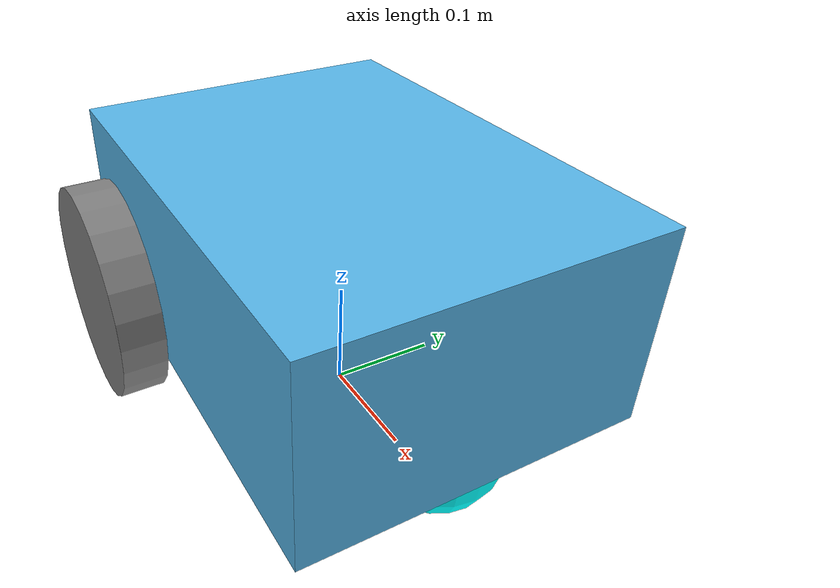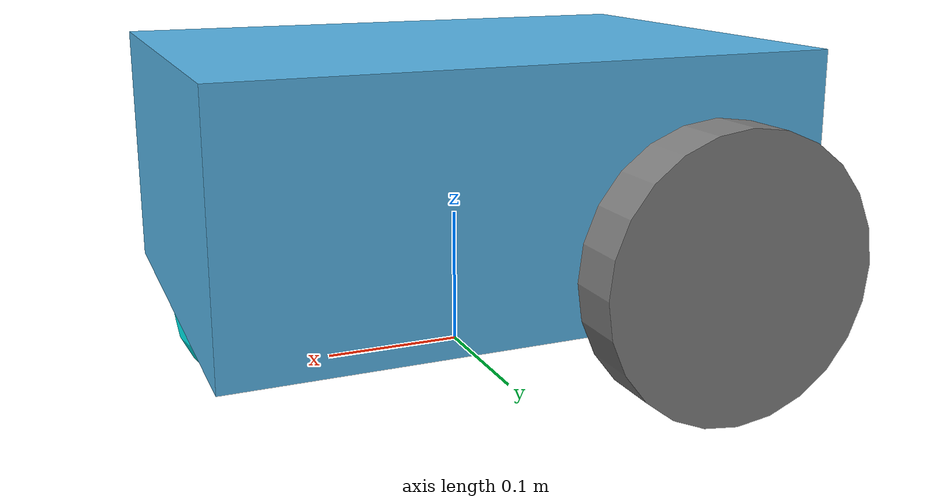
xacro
<?xml version="1.0"?>

<robot name="diffdrive_robot" xmlns:xacro="http://ros.org/wiki/xacro">
    <xacro:include filename="$(find diffdrive_description)/urdf/macros.urdf.xacro" />
    <xacro:property name="base_width" value="0.31" />
    <xacro:property name="base_length" value="0.42" />
    <xacro:property name="base_height" value="0.18" />
    <xacro:property name="base_mass" value="1.0" />

    <xacro:property name="wheel_radius" value="0.10" />
    <xacro:property name="wheel_width" value="0.04" />
    <xacro:property name="wheel_ygap" value="0.025" />
    <xacro:property name="wheel_zoff" value="0.05" />
    <xacro:property name="wheel_xoff" value="0.12" />
    <xacro:property name="wheel_mass" value="0.5" />

    <xacro:property name="caster_xoff" value="0.15" />
    <xacro:property name="caster_mass" value="0.10" />

    <link name="base_footprint" />

    <link name="base_link">
        <xacro:box_inertia m="${base_mass}" w="${base_width}" d="${base_length}" h="${base_height}" />
        <visual>
            <geometry>
                <box size="${base_length} ${base_width} ${base_height}" />
            </geometry>
        </visual>
        <collision>
            <geometry>
                <box size="${base_length} ${base_width} ${base_height}" />
            </geometry>
        </collision>
    </link>

    <joint name="base_joint" type="fixed">
        <parent link="base_footprint" />
        <child link="base_link" />
        <origin xyz="0.0 0.0  ${wheel_radius + base_height/2 - wheel_zoff}" rpy="0 0 0" />
    </joint>

    <xacro:macro name="wheel" params="prefix x_reflect y_reflect">
        <link name="${prefix}_link">
            <visual>
                <origin xyz="0 0 0" rpy="${pi/2} 0 0" />
                <geometry>
                    <cylinder radius="${wheel_radius}" length="${wheel_width}" />
                </geometry>
                <material name="Gray">
                    <color rgba="0.5 0.5 0.5 1.0" />
                </material>
            </visual>
            <collision>
                <origin xyz="0 0 0" rpy="${pi/2} 0 0" />
                <geometry>
                    <cylinder radius="${wheel_radius}" length="${wheel_width}" />
                </geometry>
            </collision>
            <xacro:cylinder_inertia m="${wheel_mass}" r="${wheel_radius}" h="${wheel_width}" />
        </link>

        <joint name="${prefix}_joint" type="continuous">
            <parent link="base_link" />
            <child link="${prefix}_link" />
            <origin
                xyz="${x_reflect*wheel_xoff} ${y_reflect*(base_width/2+wheel_ygap)} ${-wheel_zoff}"
                rpy="0 0 0" />
            <axis xyz="0 1 0" />
        </joint>
    </xacro:macro>

    <xacro:wheel prefix="drivewhl_l" x_reflect="-1" y_reflect="1" />
    <xacro:wheel prefix="drivewhl_r" x_reflect="-1" y_reflect="-1" />

    <gazebo>
        <plugin filename="gz-sim-diff-drive-system" name="gz::sim::systems::DiffDrive">
            <left_joint>drivewhl_l_joint</left_joint>
            <right_joint>drivewhl_r_joint</right_joint>

            <wheel_separation>0.4</wheel_separation>
            <wheel_radius>0.1</wheel_radius>

            <max_linear_acceleration>0.2</max_linear_acceleration>

            <topic>cmd_vel</topic>
            <odom_topic>odom</odom_topic>
            <frame_id>odom</frame_id>
            <child_frame_id>base_footprint</child_frame_id>
            <odom_publisher_frequency>30</odom_publisher_frequency>
            <tf_topic>/tf</tf_topic>
        </plugin>

        <plugin filename="gz-sim-joint-state-publisher-system" name="gz::sim::systems::JointStatePublisher">
            <topic>joint_states</topic>
            <joint_name>drivewhl_l_joint</joint_name>
            <joint_name>drivewhl_r_joint</joint_name>
        </plugin>
    </gazebo>

    <link name="front_caster">
        <visual>
            <geometry>
                <sphere radius="${(wheel_radius+wheel_zoff-(base_height/2))}" />
            </geometry>
            <material name="Cyan">
                <color rgba="0 1.0 1.0 1.0" />
            </material>
        </visual>
        <collision>
            <geometry>
                <sphere radius="${(wheel_radius+wheel_zoff-(base_height/2))}" />
            </geometry>
        </collision>
        <xacro:sphere_inertia m="${caster_mass}" r="${(wheel_radius+wheel_zoff-(base_height/2))}" />
    </link>

    <joint name="caster_joint" type="fixed">
        <parent link="base_link" />
        <child link="front_caster" />
        <origin xyz="${caster_xoff} 0.0 ${-(base_height/2)}" rpy="0 0 0" />
    </joint>

    <gazebo reference="front_caster">
        <mu>0.001</mu>
        <mu2>0.001</mu2>
    </gazebo>

    <link name="imu_link">
        <visual>
            <geometry>
                <box size="0.1 0.1 0.1" />
            </geometry>
        </visual>

        <collision>
            <geometry>
                <box size="0.1 0.1 0.1" />
            </geometry>
        </collision>

        <xacro:box_inertia m="0.1" w="0.1" d="0.1" h="0.1" />
    </link>

    <joint name="imu_joint" type="fixed">
        <parent link="base_link" />
        <child link="imu_link" />
        <origin xyz="0 0 0.01" />
    </joint>

    <gazebo reference="imu_link">
        <sensor name="imu_sensor" type="imu">
            <plugin filename="libignition-gazebo-imu-system.so" name="ignition::gazebo::systems::Imu"/>
            <always_on>1</always_on>
            <update_rate>10</update_rate>
            <visualize>true</visualize>
            <topic>imu</topic>
            <gz_frame_id>imu_link</gz_frame_id>
        </sensor>
    </gazebo>
</robot>
